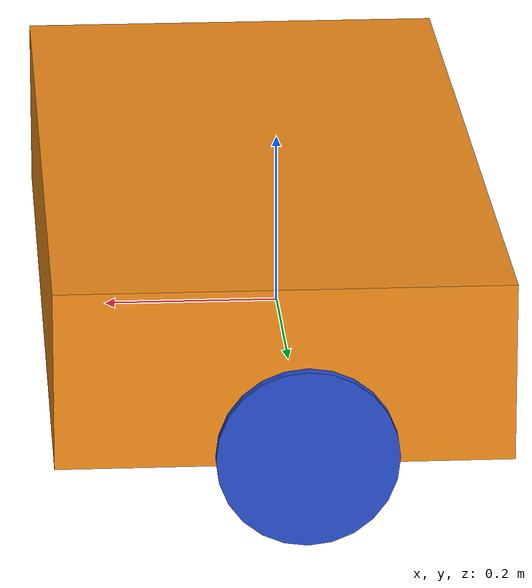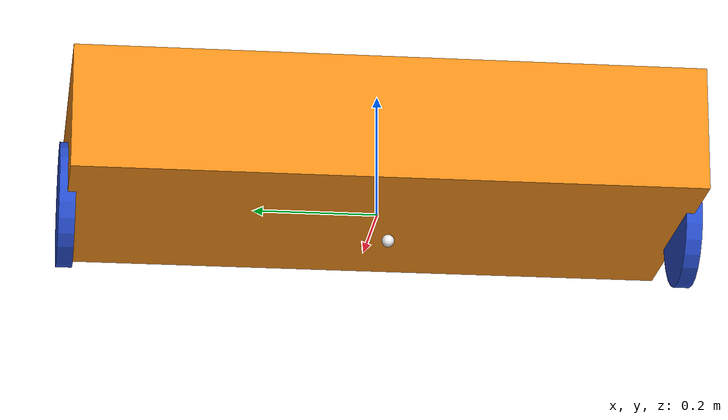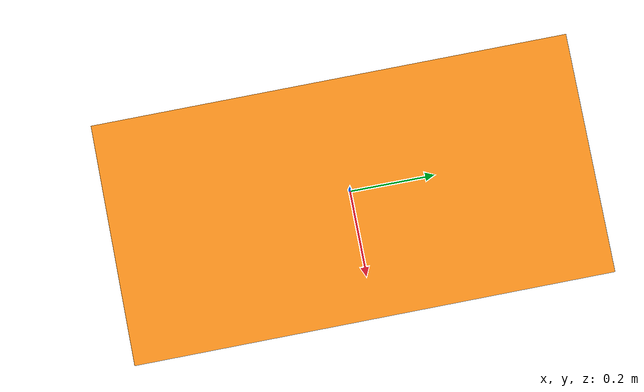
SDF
<sdf version='1.9'>
  <model name='robot'>
    <link name='base_link'>
      <inertial>
        <pose>0.022267326732673232 0 0.088217821782178227 0 0 0</pose>
        <mass>1.01</mass>
        <inertia>
          <ixx>0.086987858745874613</ixx>
          <ixy>0</ixy>
          <ixz>-0.00031188118811881481</ixz>
          <iyy>0.024791076567656799</iyy>
          <iyz>0</iyz>
          <izz>0.10447028448844881</izz>
        </inertia>
      </inertial>
      <collision name='base_link_fixed_joint_lump__chassis_collision'>
        <pose>0.02399999999999999 0 0.090000000000000011 0 0 0</pose>
        <geometry>
          <box>
            <size>0.5 1 0.20000000000000001</size>
          </box>
        </geometry>
        <surface>
          <contact>
            <ode/>
          </contact>
          <friction>
            <ode/>
          </friction>
        </surface>
      </collision>
      <collision name='base_link_fixed_joint_lump__caster_wheel_collision_1'>
        <pose>-0.151 0 -0.090000000000000011 0 0 0</pose>
        <geometry>
          <sphere>
            <radius>0.01</radius>
          </sphere>
        </geometry>
        <surface>
          <contact>
            <ode/>
          </contact>
          <friction>
            <ode>
              <mu>0.001</mu>
              <mu2>0.001</mu2>
            </ode>
          </friction>
        </surface>
      </collision>
      <visual name='base_link_fixed_joint_lump__chassis_visual'>
        <pose>0.02399999999999999 0 0.090000000000000011 0 0 0</pose>
        <geometry>
          <box>
            <size>0.5 1 0.20000000000000001</size>
          </box>
        </geometry>
        <material>
          <script>
            <name>Gazebo/Orange</name>
            <uri>file://media/materials/scripts/gazebo.material</uri>
          </script>
          <diffuse>1 0.37500003 0.125 1</diffuse>
          <ambient>1 0.37500003 0.125 1</ambient>
        </material>
      </visual>
      <visual name='base_link_fixed_joint_lump__caster_wheel_visual_1'>
        <pose>-0.151 0 -0.090000000000000011 0 0 0</pose>
        <geometry>
          <sphere>
            <radius>0.01</radius>
          </sphere>
        </geometry>
        <material>
          <script>
            <name>Gazebo/White</name>
            <uri>file://media/materials/scripts/gazebo.material</uri>
          </script>
          <diffuse>1 1 1 1</diffuse>
          <ambient>1 1 1 1</ambient>
        </material>
      </visual>
    </link>
    <joint name='left_wheel_joint' type='revolute'>
      <pose relative_to='base_link'>0 0.5 0 -1.5707963267948959 0 0</pose>
      <parent>base_link</parent>
      <child>left_wheel</child>
      <axis>
        <xyz>0 0 1</xyz>
        <limit>
          <lower>-inf</lower>
          <upper>inf</upper>
        </limit>
        <dynamics>
          <spring_reference>0</spring_reference>
          <spring_stiffness>0</spring_stiffness>
        </dynamics>
      </axis>
    </joint>
    <link name='left_wheel'>
      <pose relative_to='left_wheel_joint'>0 0 0 0 0 0</pose>
      <inertial>
        <pose>0 0 0 0 0 0</pose>
        <mass>0.050000000000000003</mass>
        <inertia>
          <ixx>0.00012781666666666669</ixx>
          <ixy>0</ixy>
          <ixz>0</ixz>
          <iyy>0.00012781666666666669</iyy>
          <iyz>0</iyz>
          <izz>0.00025000000000000011</izz>
        </inertia>
      </inertial>
      <collision name='left_wheel_collision'>
        <pose>0 0 0 0 0 0</pose>
        <geometry>
          <sphere>
            <radius>0.10000000000000001</radius>
          </sphere>
        </geometry>
        <surface>
          <contact>
            <ode/>
          </contact>
          <friction>
            <ode/>
          </friction>
        </surface>
      </collision>
      <visual name='left_wheel_visual'>
        <pose>0 0 0 0 0 0</pose>
        <geometry>
          <cylinder>
            <length>0.025999999999999999</length>
            <radius>0.10000000000000001</radius>
          </cylinder>
        </geometry>
        <material>
          <script>
            <name>Gazebo/Blue</name>
            <uri>file://media/materials/scripts/gazebo.material</uri>
          </script>
          <diffuse>0.25 0.25 1 1</diffuse>
          <ambient>0.25 0.25 1 1</ambient>
        </material>
      </visual>
    </link>
    <joint name='right_wheel_joint' type='revolute'>
      <pose relative_to='base_link'>0 -0.5 0 1.5707963267948959 0 0</pose>
      <parent>base_link</parent>
      <child>right_wheel</child>
      <axis>
        <xyz>0 0 -1</xyz>
        <limit>
          <lower>-inf</lower>
          <upper>inf</upper>
        </limit>
        <dynamics>
          <spring_reference>0</spring_reference>
          <spring_stiffness>0</spring_stiffness>
        </dynamics>
      </axis>
    </joint>
    <link name='right_wheel'>
      <pose relative_to='right_wheel_joint'>0 0 0 0 0 0</pose>
      <inertial>
        <pose>0 0 0 0 0 0</pose>
        <mass>0.050000000000000003</mass>
        <inertia>
          <ixx>0.00012781666666666669</ixx>
          <ixy>0</ixy>
          <ixz>0</ixz>
          <iyy>0.00012781666666666669</iyy>
          <iyz>0</iyz>
          <izz>0.00025000000000000011</izz>
        </inertia>
      </inertial>
      <collision name='right_wheel_collision'>
        <pose>0 0 0 0 0 0</pose>
        <geometry>
          <sphere>
            <radius>0.10000000000000001</radius>
          </sphere>
        </geometry>
        <surface>
          <contact>
            <ode/>
          </contact>
          <friction>
            <ode/>
          </friction>
        </surface>
      </collision>
      <visual name='right_wheel_visual'>
        <pose>0 0 0 0 0 0</pose>
        <geometry>
          <cylinder>
            <length>0.025999999999999999</length>
            <radius>0.10000000000000001</radius>
          </cylinder>
        </geometry>
        <material>
          <script>
            <name>Gazebo/Blue</name>
            <uri>file://media/materials/scripts/gazebo.material</uri>
          </script>
          <diffuse>0.25 0.25 1 1</diffuse>
          <ambient>0.25 0.25 1 1</ambient>
        </material>
      </visual>
    </link>
    <plugin name='gz::sim::systems::JointStatePublisher' filename='gz-sim-joint-state-publisher-system'/>
    <plugin name='gz::sim::systems::DiffDrive' filename='gz-sim-diff-drive-system'>
      <left_joint>left_wheel_joint</left_joint>
      <right_joint>right_wheel_joint</right_joint>
      <child_frame_id>robot/base_link</child_frame_id>
      <wheel_separation>0.291</wheel_separation>
      <wheel_radius>0.033</wheel_radius>
      <odom_publish_frequency>10</odom_publish_frequency>
    </plugin>
    <frame name='base_footprint_joint' attached_to='base_link'>
      <pose>0 0 -0.13800000000000001 0 0 0</pose>
    </frame>
    <frame name='base_footprint' attached_to='base_footprint_joint'>
      <pose>0 0 0 0 0 0</pose>
    </frame>
    <frame name='caster_wheel_joint' attached_to='chassis'>
      <pose>0.074999999999999997 0 -0.080000000000000016 0 0 0</pose>
    </frame>
    <frame name='caster_wheel' attached_to='caster_wheel_joint'>
      <pose>0 0 0 0 0 0</pose>
    </frame>
    <frame name='chassis_joint' attached_to='base_link'>
      <pose>-0.22600000000000001 0 -0.01 0 0 0</pose>
    </frame>
    <frame name='chassis' attached_to='chassis_joint'>
      <pose>0 0 0 0 0 0</pose>
    </frame>
  </model>
</sdf>
